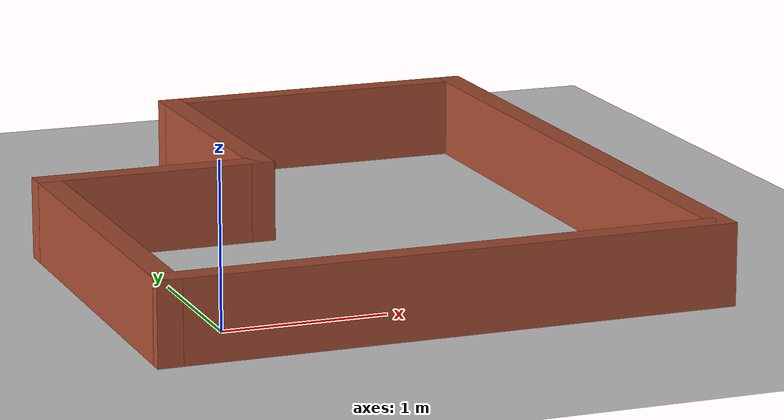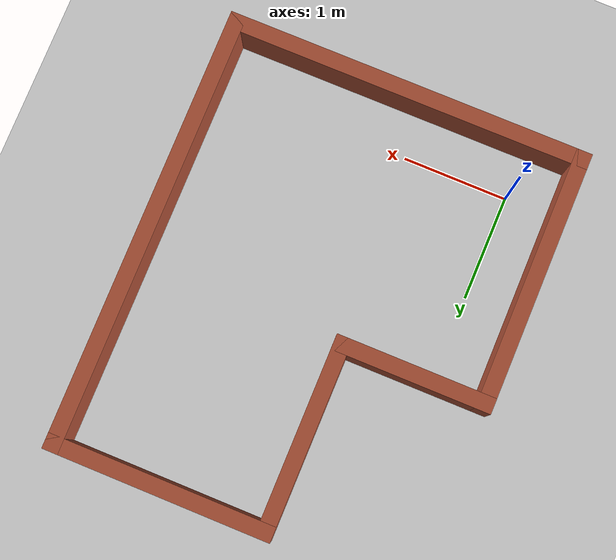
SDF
<sdf version="1.6">
 <world name="default">
  <light name="sun" type="directional">
   <pose>0 0 10 0 -0 0</pose>
   <diffuse>0.8 0.8 0.8 1</diffuse>
   <specular>0.1 0.1 0.1 1</specular>
   <attenuation>
    <range>1000</range>
    <constant>0.9</constant>
    <linear>0.01</linear>
    <quadratic>0.001</quadratic>
   </attenuation>
   <direction>-0.5 0.5 -1</direction>
  </light>
  <model name="ground_plane">
   <static>1</static>
   <link name="link">
    <collision name="collision">
     <geometry><plane><normal>0 0 1</normal><size>100 100</size></plane></geometry>
     <surface><friction><ode><mu>100</mu><mu2>50</mu2></ode></friction></surface>
    </collision>
    <visual name="visual">
     <cast_shadows>0</cast_shadows>
     <geometry><plane><normal>0 0 1</normal><size>100 100</size></plane></geometry>
     <material>
      <script><uri>file://media/materials/scripts/gazebo.material</uri><name>Gazebo/Grey</name></script>
     </material>
    </visual>
   </link>
  </model>
  <gravity>0 0 -9.8</gravity>
  <magnetic_field>6e-06 2.3e-05 -4.2e-05</magnetic_field>
  <atmosphere type="adiabatic"/>
  <physics name="default_physics" default="0" type="ode">
   <max_step_size>0.001</max_step_size>
   <real_time_factor>1</real_time_factor>
   <real_time_update_rate>1000</real_time_update_rate>
  </physics>
  <scene><ambient>0.4 0.4 0.4 1</ambient><background>0.7 0.7 0.7 1</background><shadows>1</shadows></scene>
  <spherical_coordinates>
   <surface_model>EARTH_WGS84</surface_model>
   <latitude_deg>0</latitude_deg>
   <longitude_deg>0</longitude_deg>
   <elevation>0</elevation>
   <heading_deg>0</heading_deg>
  </spherical_coordinates>
  <model name="external1">
   <pose>1.19113 1.56676 0 0 -0 1.57398</pose>
   <link name="Wall_10">
    <collision name="Wall_10_Collision">
     <geometry><box><size>2.5 0.15 0.5</size></box></geometry>
     <pose>0 0 0.25 0 -0 0</pose>
    </collision>
    <visual name="Wall_10_Visual">
     <pose>0 0 0.25 0 -0 0</pose>
     <geometry><box><size>2.5 0.15 0.5</size></box></geometry>
     <material>
      <script><uri>file://media/materials/scripts/gazebo.material</uri><name>Gazebo/Bricks</name></script>
      <ambient>1 1 1 1</ambient>
     </material>
    </visual>
    <pose>-0.875 1.67477 0 0 -0 0</pose>
   </link>
   <link name="Wall_12">
    <collision name="Wall_12_Collision">
     <geometry><box><size>3.5 0.15 0.5</size></box></geometry>
     <pose>0 0 0.25 0 -0 0</pose>
    </collision>
    <visual name="Wall_12_Visual">
     <pose>0 0 0.25 0 -0 0</pose>
     <geometry><box><size>3.5 0.15 0.5</size></box></geometry>
     <material>
      <script><uri>file://media/materials/scripts/gazebo.material</uri><name>Gazebo/Bricks</name></script>
      <ambient>1 1 1 1</ambient>
     </material>
    </visual>
    <pose>-2.05 -0.00023 0 0 0 -1.5708</pose>
   </link>
   <link name="Wall_20">
    <collision name="Wall_20_Collision">
     <geometry><box><size>4.25 0.15 0.5</size></box></geometry>
     <pose>0 0 0.25 0 -0 0</pose>
    </collision>
    <visual name="Wall_20_Visual">
     <pose>0 0 0.25 0 -0 0</pose>
     <geometry><box><size>4.25 0.15 0.5</size></box></geometry>
     <material>
      <script><uri>file://media/materials/scripts/gazebo.material</uri><name>Gazebo/Bricks</name></script>
      <ambient>1 1 1 1</ambient>
     </material>
    </visual>
    <pose>0 -1.67523 0 0 -0 0</pose>
   </link>
   <link name="Wall_21">
    <collision name="Wall_21_Collision">
     <geometry><box><size>2.144 0.15 0.5</size></box></geometry>
     <pose>0 0 0.25 0 -0 0</pose>
    </collision>
    <visual name="Wall_21_Visual">
     <pose>0 0 0.25 0 -0 0</pose>
     <geometry><box><size>2.144 0.15 0.5</size></box></geometry>
     <material>
      <script><uri>file://media/materials/scripts/gazebo.material</uri><name>Gazebo/Bricks</name></script>
      <ambient>1 1 1 1</ambient>
     </material>
    </visual>
    <pose>2.05 -0.67823 0 0 -0 1.5708</pose>
   </link>
   <link name="Wall_24">
    <collision name="Wall_24_Collision">
     <geometry><box><size>1.9 0.15 0.5</size></box></geometry>
     <pose>0 0 0.25 0 -0 0</pose>
    </collision>
    <visual name="Wall_24_Visual">
     <pose>0 0 0.25 0 -0 0</pose>
     <geometry><box><size>1.9 0.15 0.5</size></box></geometry>
     <material>
      <script><uri>file://media/materials/scripts/gazebo.material</uri><name>Gazebo/Bricks</name></script>
      <ambient>1 1 1 1</ambient>
     </material>
    </visual>
    <pose>1.175 0.31877 0 0 -0 3.14159</pose>
   </link>
   <link name="Wall_25">
    <collision name="Wall_25_Collision">
     <geometry><box><size>1.50692 0.15 0.5</size></box></geometry>
     <pose>0 0 0.25 0 -0 0</pose>
    </collision>
    <visual name="Wall_25_Visual">
     <pose>0 0 0.25 0 -0 0</pose>
     <geometry><box><size>1.50692 0.15 0.5</size></box></geometry>
     <material>
      <script><uri>file://media/materials/scripts/gazebo.material</uri><name>Gazebo/Bricks</name></script>
      <ambient>1 1 1 1</ambient>
     </material>
    </visual>
    <pose>0.3 0.99677 0 0 -0 1.5708</pose>
   </link>
   <static>1</static>
  </model>
 </world>
</sdf>
